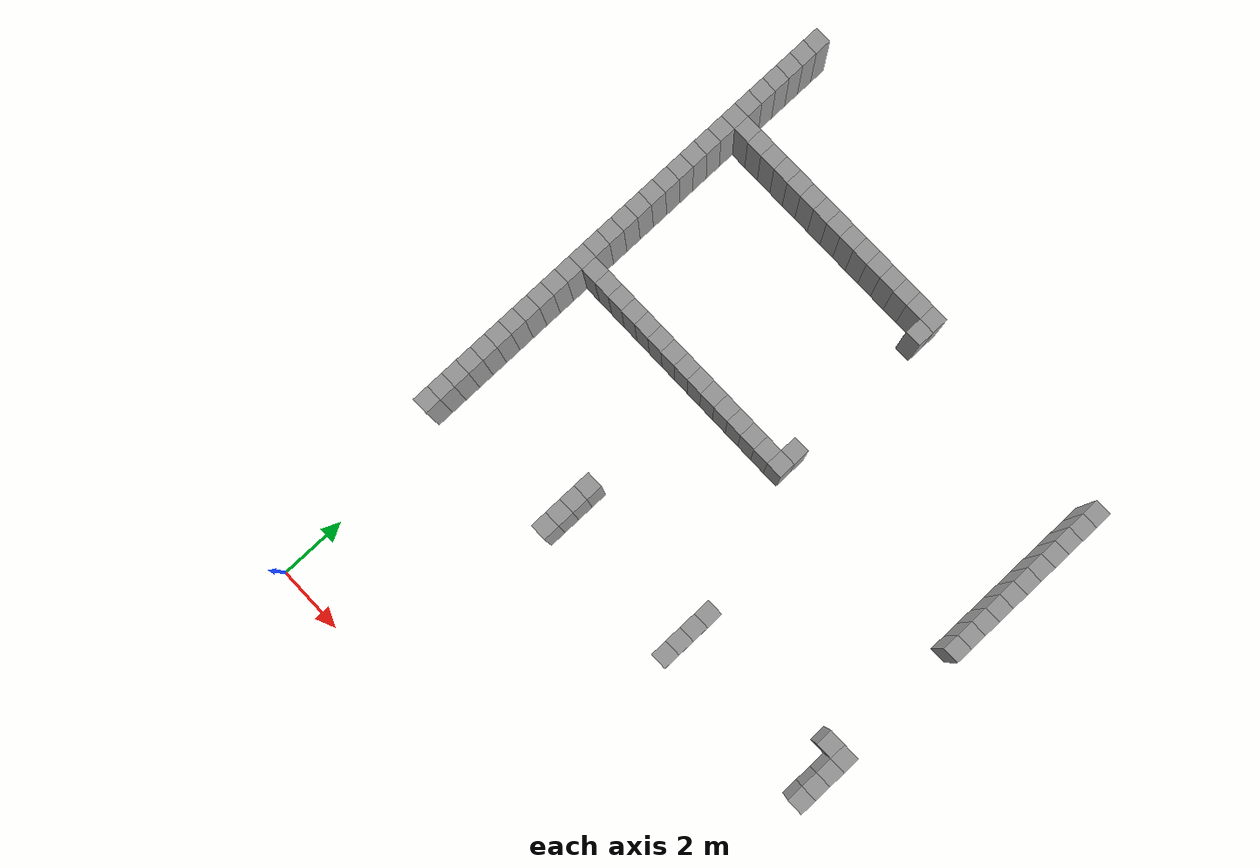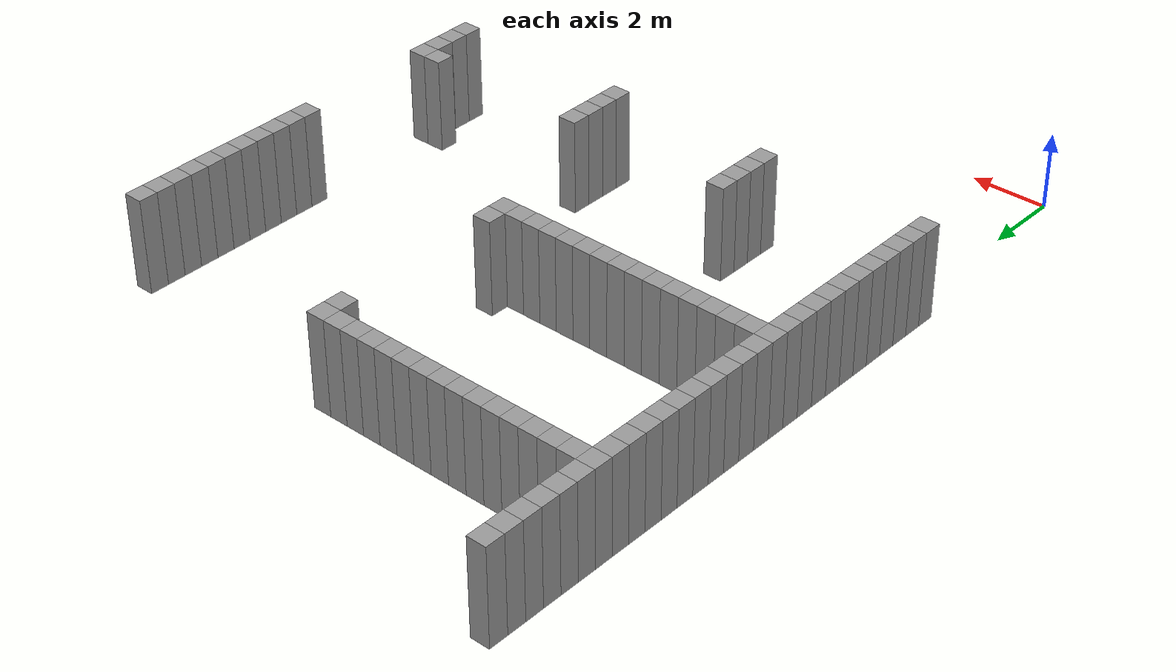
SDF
<sdf version="1.7">
 <model name="image1">
  <pose>-0.375 -1.54 0 0 -0 0</pose>
  <link name="Wall_15">
   <collision name="Wall_15_Collision">
    <geometry><box><size>0.5 0.5 2.5</size></box></geometry>
    <pose>0 0 1.25 0 -0 0</pose>
   </collision>
   <visual name="Wall_15_Visual">
    <pose>0 0 1.25 0 -0 0</pose>
    <geometry><box><size>0.5 0.5 2.5</size></box></geometry>
    <material>
     <script><uri>file://media/materials/scripts/gazebo.material</uri><name>Gazebo/Grey</name></script>
     <ambient>1 1 1 1</ambient>
    </material>
    <meta><layer>0</layer></meta>
   </visual>
   <pose>0.0 7.5 0 0 -0 0</pose>
  </link>
  <link name="Wall_16">
   <collision name="Wall_16_Collision">
    <geometry><box><size>0.5 0.5 2.5</size></box></geometry>
    <pose>0 0 1.25 0 -0 0</pose>
   </collision>
   <visual name="Wall_16_Visual">
    <pose>0 0 1.25 0 -0 0</pose>
    <geometry><box><size>0.5 0.5 2.5</size></box></geometry>
    <material>
     <script><uri>file://media/materials/scripts/gazebo.material</uri><name>Gazebo/Grey</name></script>
     <ambient>1 1 1 1</ambient>
    </material>
    <meta><layer>0</layer></meta>
   </visual>
   <pose>0.0 8.0 0 0 -0 0</pose>
  </link>
  <link name="Wall_17">
   <collision name="Wall_17_Collision">
    <geometry><box><size>0.5 0.5 2.5</size></box></geometry>
    <pose>0 0 1.25 0 -0 0</pose>
   </collision>
   <visual name="Wall_17_Visual">
    <pose>0 0 1.25 0 -0 0</pose>
    <geometry><box><size>0.5 0.5 2.5</size></box></geometry>
    <material>
     <script><uri>file://media/materials/scripts/gazebo.material</uri><name>Gazebo/Grey</name></script>
     <ambient>1 1 1 1</ambient>
    </material>
    <meta><layer>0</layer></meta>
   </visual>
   <pose>0.0 8.5 0 0 -0 0</pose>
  </link>
  <link name="Wall_18">
   <collision name="Wall_18_Collision">
    <geometry><box><size>0.5 0.5 2.5</size></box></geometry>
    <pose>0 0 1.25 0 -0 0</pose>
   </collision>
   <visual name="Wall_18_Visual">
    <pose>0 0 1.25 0 -0 0</pose>
    <geometry><box><size>0.5 0.5 2.5</size></box></geometry>
    <material>
     <script><uri>file://media/materials/scripts/gazebo.material</uri><name>Gazebo/Grey</name></script>
     <ambient>1 1 1 1</ambient>
    </material>
    <meta><layer>0</layer></meta>
   </visual>
   <pose>0.0 9.0 0 0 -0 0</pose>
  </link>
  <link name="Wall_19">
   <collision name="Wall_19_Collision">
    <geometry><box><size>0.5 0.5 2.5</size></box></geometry>
    <pose>0 0 1.25 0 -0 0</pose>
   </collision>
   <visual name="Wall_19_Visual">
    <pose>0 0 1.25 0 -0 0</pose>
    <geometry><box><size>0.5 0.5 2.5</size></box></geometry>
    <material>
     <script><uri>file://media/materials/scripts/gazebo.material</uri><name>Gazebo/Grey</name></script>
     <ambient>1 1 1 1</ambient>
    </material>
    <meta><layer>0</layer></meta>
   </visual>
   <pose>0.0 9.5 0 0 -0 0</pose>
  </link>
  <link name="Wall_20">
   <collision name="Wall_20_Collision">
    <geometry><box><size>0.5 0.5 2.5</size></box></geometry>
    <pose>0 0 1.25 0 -0 0</pose>
   </collision>
   <visual name="Wall_20_Visual">
    <pose>0 0 1.25 0 -0 0</pose>
    <geometry><box><size>0.5 0.5 2.5</size></box></geometry>
    <material>
     <script><uri>file://media/materials/scripts/gazebo.material</uri><name>Gazebo/Grey</name></script>
     <ambient>1 1 1 1</ambient>
    </material>
    <meta><layer>0</layer></meta>
   </visual>
   <pose>0.0 10.0 0 0 -0 0</pose>
  </link>
  <link name="Wall_21">
   <collision name="Wall_21_Collision">
    <geometry><box><size>0.5 0.5 2.5</size></box></geometry>
    <pose>0 0 1.25 0 -0 0</pose>
   </collision>
   <visual name="Wall_21_Visual">
    <pose>0 0 1.25 0 -0 0</pose>
    <geometry><box><size>0.5 0.5 2.5</size></box></geometry>
    <material>
     <script><uri>file://media/materials/scripts/gazebo.material</uri><name>Gazebo/Grey</name></script>
     <ambient>1 1 1 1</ambient>
    </material>
    <meta><layer>0</layer></meta>
   </visual>
   <pose>0.0 10.5 0 0 -0 0</pose>
  </link>
  <link name="Wall_22">
   <collision name="Wall_22_Collision">
    <geometry><box><size>0.5 0.5 2.5</size></box></geometry>
    <pose>0 0 1.25 0 -0 0</pose>
   </collision>
   <visual name="Wall_22_Visual">
    <pose>0 0 1.25 0 -0 0</pose>
    <geometry><box><size>0.5 0.5 2.5</size></box></geometry>
    <material>
     <script><uri>file://media/materials/scripts/gazebo.material</uri><name>Gazebo/Grey</name></script>
     <ambient>1 1 1 1</ambient>
    </material>
    <meta><layer>0</layer></meta>
   </visual>
   <pose>0.0 11.0 0 0 -0 0</pose>
  </link>
  <link name="Wall_23">
   <collision name="Wall_23_Collision">
    <geometry><box><size>0.5 0.5 2.5</size></box></geometry>
    <pose>0 0 1.25 0 -0 0</pose>
   </collision>
   <visual name="Wall_23_Visual">
    <pose>0 0 1.25 0 -0 0</pose>
    <geometry><box><size>0.5 0.5 2.5</size></box></geometry>
    <material>
     <script><uri>file://media/materials/scripts/gazebo.material</uri><name>Gazebo/Grey</name></script>
     <ambient>1 1 1 1</ambient>
    </material>
    <meta><layer>0</layer></meta>
   </visual>
   <pose>0.0 11.5 0 0 -0 0</pose>
  </link>
  <link name="Wall_24">
   <collision name="Wall_24_Collision">
    <geometry><box><size>0.5 0.5 2.5</size></box></geometry>
    <pose>0 0 1.25 0 -0 0</pose>
   </collision>
   <visual name="Wall_24_Visual">
    <pose>0 0 1.25 0 -0 0</pose>
    <geometry><box><size>0.5 0.5 2.5</size></box></geometry>
    <material>
     <script><uri>file://media/materials/scripts/gazebo.material</uri><name>Gazebo/Grey</name></script>
     <ambient>1 1 1 1</ambient>
    </material>
    <meta><layer>0</layer></meta>
   </visual>
   <pose>0.0 12.0 0 0 -0 0</pose>
  </link>
  <link name="Wall_25">
   <collision name="Wall_25_Collision">
    <geometry><box><size>0.5 0.5 2.5</size></box></geometry>
    <pose>0 0 1.25 0 -0 0</pose>
   </collision>
   <visual name="Wall_25_Visual">
    <pose>0 0 1.25 0 -0 0</pose>
    <geometry><box><size>0.5 0.5 2.5</size></box></geometry>
    <material>
     <script><uri>file://media/materials/scripts/gazebo.material</uri><name>Gazebo/Grey</name></script>
     <ambient>1 1 1 1</ambient>
    </material>
    <meta><layer>0</layer></meta>
   </visual>
   <pose>0.0 12.5 0 0 -0 0</pose>
  </link>
  <link name="Wall_26">
   <collision name="Wall_26_Collision">
    <geometry><box><size>0.5 0.5 2.5</size></box></geometry>
    <pose>0 0 1.25 0 -0 0</pose>
   </collision>
   <visual name="Wall_26_Visual">
    <pose>0 0 1.25 0 -0 0</pose>
    <geometry><box><size>0.5 0.5 2.5</size></box></geometry>
    <material>
     <script><uri>file://media/materials/scripts/gazebo.material</uri><name>Gazebo/Grey</name></script>
     <ambient>1 1 1 1</ambient>
    </material>
    <meta><layer>0</layer></meta>
   </visual>
   <pose>0.0 13.0 0 0 -0 0</pose>
  </link>
  <link name="Wall_27">
   <collision name="Wall_27_Collision">
    <geometry><box><size>0.5 0.5 2.5</size></box></geometry>
    <pose>0 0 1.25 0 -0 0</pose>
   </collision>
   <visual name="Wall_27_Visual">
    <pose>0 0 1.25 0 -0 0</pose>
    <geometry><box><size>0.5 0.5 2.5</size></box></geometry>
    <material>
     <script><uri>file://media/materials/scripts/gazebo.material</uri><name>Gazebo/Grey</name></script>
     <ambient>1 1 1 1</ambient>
    </material>
    <meta><layer>0</layer></meta>
   </visual>
   <pose>0.0 13.5 0 0 -0 0</pose>
  </link>
  <link name="Wall_28">
   <collision name="Wall_28_Collision">
    <geometry><box><size>0.5 0.5 2.5</size></box></geometry>
    <pose>0 0 1.25 0 -0 0</pose>
   </collision>
   <visual name="Wall_28_Visual">
    <pose>0 0 1.25 0 -0 0</pose>
    <geometry><box><size>0.5 0.5 2.5</size></box></geometry>
    <material>
     <script><uri>file://media/materials/scripts/gazebo.material</uri><name>Gazebo/Grey</name></script>
     <ambient>1 1 1 1</ambient>
    </material>
    <meta><layer>0</layer></meta>
   </visual>
   <pose>0.0 14.0 0 0 -0 0</pose>
  </link>
  <link name="Wall_29">
   <collision name="Wall_29_Collision">
    <geometry><box><size>0.5 0.5 2.5</size></box></geometry>
    <pose>0 0 1.25 0 -0 0</pose>
   </collision>
   <visual name="Wall_29_Visual">
    <pose>0 0 1.25 0 -0 0</pose>
    <geometry><box><size>0.5 0.5 2.5</size></box></geometry>
    <material>
     <script><uri>file://media/materials/scripts/gazebo.material</uri><name>Gazebo/Grey</name></script>
     <ambient>1 1 1 1</ambient>
    </material>
    <meta><layer>0</layer></meta>
   </visual>
   <pose>0.0 14.5 0 0 -0 0</pose>
  </link>
  <link name="Wall_30">
   <collision name="Wall_30_Collision">
    <geometry><box><size>0.5 0.5 2.5</size></box></geometry>
    <pose>0 0 1.25 0 -0 0</pose>
   </collision>
   <visual name="Wall_30_Visual">
    <pose>0 0 1.25 0 -0 0</pose>
    <geometry><box><size>0.5 0.5 2.5</size></box></geometry>
    <material>
     <script><uri>file://media/materials/scripts/gazebo.material</uri><name>Gazebo/Grey</name></script>
     <ambient>1 1 1 1</ambient>
    </material>
    <meta><layer>0</layer></meta>
   </visual>
   <pose>0.0 15.0 0 0 -0 0</pose>
  </link>
  <link name="Wall_31">
   <collision name="Wall_31_Collision">
    <geometry><box><size>0.5 0.5 2.5</size></box></geometry>
    <pose>0 0 1.25 0 -0 0</pose>
   </collision>
   <visual name="Wall_31_Visual">
    <pose>0 0 1.25 0 -0 0</pose>
    <geometry><box><size>0.5 0.5 2.5</size></box></geometry>
    <material>
     <script><uri>file://media/materials/scripts/gazebo.material</uri><name>Gazebo/Grey</name></script>
     <ambient>1 1 1 1</ambient>
    </material>
    <meta><layer>0</layer></meta>
   </visual>
   <pose>0.0 15.5 0 0 -0 0</pose>
  </link>
  <link name="Wall_32">
   <collision name="Wall_32_Collision">
    <geometry><box><size>0.5 0.5 2.5</size></box></geometry>
    <pose>0 0 1.25 0 -0 0</pose>
   </collision>
   <visual name="Wall_32_Visual">
    <pose>0 0 1.25 0 -0 0</pose>
    <geometry><box><size>0.5 0.5 2.5</size></box></geometry>
    <material>
     <script><uri>file://media/materials/scripts/gazebo.material</uri><name>Gazebo/Grey</name></script>
     <ambient>1 1 1 1</ambient>
    </material>
    <meta><layer>0</layer></meta>
   </visual>
   <pose>0.0 16.0 0 0 -0 0</pose>
  </link>
  <link name="Wall_33">
   <collision name="Wall_33_Collision">
    <geometry><box><size>0.5 0.5 2.5</size></box></geometry>
    <pose>0 0 1.25 0 -0 0</pose>
   </collision>
   <visual name="Wall_33_Visual">
    <pose>0 0 1.25 0 -0 0</pose>
    <geometry><box><size>0.5 0.5 2.5</size></box></geometry>
    <material>
     <script><uri>file://media/materials/scripts/gazebo.material</uri><name>Gazebo/Grey</name></script>
     <ambient>1 1 1 1</ambient>
    </material>
    <meta><layer>0</layer></meta>
   </visual>
   <pose>0.0 16.5 0 0 -0 0</pose>
  </link>
  <link name="Wall_34">
   <collision name="Wall_34_Collision">
    <geometry><box><size>0.5 0.5 2.5</size></box></geometry>
    <pose>0 0 1.25 0 -0 0</pose>
   </collision>
   <visual name="Wall_34_Visual">
    <pose>0 0 1.25 0 -0 0</pose>
    <geometry><box><size>0.5 0.5 2.5</size></box></geometry>
    <material>
     <script><uri>file://media/materials/scripts/gazebo.material</uri><name>Gazebo/Grey</name></script>
     <ambient>1 1 1 1</ambient>
    </material>
    <meta><layer>0</layer></meta>
   </visual>
   <pose>0.0 17.0 0 0 -0 0</pose>
  </link>
  <link name="Wall_35">
   <collision name="Wall_35_Collision">
    <geometry><box><size>0.5 0.5 2.5</size></box></geometry>
    <pose>0 0 1.25 0 -0 0</pose>
   </collision>
   <visual name="Wall_35_Visual">
    <pose>0 0 1.25 0 -0 0</pose>
    <geometry><box><size>0.5 0.5 2.5</size></box></geometry>
    <material>
     <script><uri>file://media/materials/scripts/gazebo.material</uri><name>Gazebo/Grey</name></script>
     <ambient>1 1 1 1</ambient>
    </material>
    <meta><layer>0</layer></meta>
   </visual>
   <pose>0.0 17.5 0 0 -0 0</pose>
  </link>
  <link name="Wall_36">
   <collision name="Wall_36_Collision">
    <geometry><box><size>0.5 0.5 2.5</size></box></geometry>
    <pose>0 0 1.25 0 -0 0</pose>
   </collision>
   <visual name="Wall_36_Visual">
    <pose>0 0 1.25 0 -0 0</pose>
    <geometry><box><size>0.5 0.5 2.5</size></box></geometry>
    <material>
     <script><uri>file://media/materials/scripts/gazebo.material</uri><name>Gazebo/Grey</name></script>
     <ambient>1 1 1 1</ambient>
    </material>
    <meta><layer>0</layer></meta>
   </visual>
   <pose>0.0 18.0 0 0 -0 0</pose>
  </link>
  <link name="Wall_37">
   <collision name="Wall_37_Collision">
    <geometry><box><size>0.5 0.5 2.5</size></box></geometry>
    <pose>0 0 1.25 0 -0 0</pose>
   </collision>
   <visual name="Wall_37_Visual">
    <pose>0 0 1.25 0 -0 0</pose>
    <geometry><box><size>0.5 0.5 2.5</size></box></geometry>
    <material>
     <script><uri>file://media/materials/scripts/gazebo.material</uri><name>Gazebo/Grey</name></script>
     <ambient>1 1 1 1</ambient>
    </material>
    <meta><layer>0</layer></meta>
   </visual>
   <pose>0.0 18.5 0 0 -0 0</pose>
  </link>
  <link name="Wall_38">
   <collision name="Wall_38_Collision">
    <geometry><box><size>0.5 0.5 2.5</size></box></geometry>
    <pose>0 0 1.25 0 -0 0</pose>
   </collision>
   <visual name="Wall_38_Visual">
    <pose>0 0 1.25 0 -0 0</pose>
    <geometry><box><size>0.5 0.5 2.5</size></box></geometry>
    <material>
     <script><uri>file://media/materials/scripts/gazebo.material</uri><name>Gazebo/Grey</name></script>
     <ambient>1 1 1 1</ambient>
    </material>
    <meta><layer>0</layer></meta>
   </visual>
   <pose>0.0 19.0 0 0 -0 0</pose>
  </link>
  <link name="Wall_39">
   <collision name="Wall_39_Collision">
    <geometry><box><size>0.5 0.5 2.5</size></box></geometry>
    <pose>0 0 1.25 0 -0 0</pose>
   </collision>
   <visual name="Wall_39_Visual">
    <pose>0 0 1.25 0 -0 0</pose>
    <geometry><box><size>0.5 0.5 2.5</size></box></geometry>
    <material>
     <script><uri>file://media/materials/scripts/gazebo.material</uri><name>Gazebo/Grey</name></script>
     <ambient>1 1 1 1</ambient>
    </material>
    <meta><layer>0</layer></meta>
   </visual>
   <pose>0.0 19.5 0 0 -0 0</pose>
  </link>
  <link name="Wall_40">
   <collision name="Wall_40_Collision">
    <geometry><box><size>0.5 0.5 2.5</size></box></geometry>
    <pose>0 0 1.25 0 -0 0</pose>
   </collision>
   <visual name="Wall_40_Visual">
    <pose>0 0 1.25 0 -0 0</pose>
    <geometry><box><size>0.5 0.5 2.5</size></box></geometry>
    <material>
     <script><uri>file://media/materials/scripts/gazebo.material</uri><name>Gazebo/Grey</name></script>
     <ambient>1 1 1 1</ambient>
    </material>
    <meta><layer>0</layer></meta>
   </visual>
   <pose>0.0 20.0 0 0 -0 0</pose>
  </link>
  <link name="Wall_41">
   <collision name="Wall_41_Collision">
    <geometry><box><size>0.5 0.5 2.5</size></box></geometry>
    <pose>0 0 1.25 0 -0 0</pose>
   </collision>
   <visual name="Wall_41_Visual">
    <pose>0 0 1.25 0 -0 0</pose>
    <geometry><box><size>0.5 0.5 2.5</size></box></geometry>
    <material>
     <script><uri>file://media/materials/scripts/gazebo.material</uri><name>Gazebo/Grey</name></script>
     <ambient>1 1 1 1</ambient>
    </material>
    <meta><layer>0</layer></meta>
   </visual>
   <pose>0.0 20.5 0 0 -0 0</pose>
  </link>
  <link name="Wall_42">
   <collision name="Wall_42_Collision">
    <geometry><box><size>0.5 0.5 2.5</size></box></geometry>
    <pose>0 0 1.25 0 -0 0</pose>
   </collision>
   <visual name="Wall_42_Visual">
    <pose>0 0 1.25 0 -0 0</pose>
    <geometry><box><size>0.5 0.5 2.5</size></box></geometry>
    <material>
     <script><uri>file://media/materials/scripts/gazebo.material</uri><name>Gazebo/Grey</name></script>
     <ambient>1 1 1 1</ambient>
    </material>
    <meta><layer>0</layer></meta>
   </visual>
   <pose>0.0 21.0 0 0 -0 0</pose>
  </link>
  <link name="Wall_43">
   <collision name="Wall_43_Collision">
    <geometry><box><size>0.5 0.5 2.5</size></box></geometry>
    <pose>0 0 1.25 0 -0 0</pose>
   </collision>
   <visual name="Wall_43_Visual">
    <pose>0 0 1.25 0 -0 0</pose>
    <geometry><box><size>0.5 0.5 2.5</size></box></geometry>
    <material>
     <script><uri>file://media/materials/scripts/gazebo.material</uri><name>Gazebo/Grey</name></script>
     <ambient>1 1 1 1</ambient>
    </material>
    <meta><layer>0</layer></meta>
   </visual>
   <pose>0.0 21.5 0 0 -0 0</pose>
  </link>
  <link name="Wall_61">
   <collision name="Wall_61_Collision">
    <geometry><box><size>0.5 0.5 2.5</size></box></geometry>
    <pose>0 0 1.25 0 -0 0</pose>
   </collision>
   <visual name="Wall_61_Visual">
    <pose>0 0 1.25 0 -0 0</pose>
    <geometry><box><size>0.5 0.5 2.5</size></box></geometry>
    <material>
     <script><uri>file://media/materials/scripts/gazebo.material</uri><name>Gazebo/Grey</name></script>
     <ambient>1 1 1 1</ambient>
    </material>
    <meta><layer>0</layer></meta>
   </visual>
   <pose>0.5 13.0 0 0 -0 0</pose>
  </link>
  <link name="Wall_62">
   <collision name="Wall_62_Collision">
    <geometry><box><size>0.5 0.5 2.5</size></box></geometry>
    <pose>0 0 1.25 0 -0 0</pose>
   </collision>
   <visual name="Wall_62_Visual">
    <pose>0 0 1.25 0 -0 0</pose>
    <geometry><box><size>0.5 0.5 2.5</size></box></geometry>
    <material>
     <script><uri>file://media/materials/scripts/gazebo.material</uri><name>Gazebo/Grey</name></script>
     <ambient>1 1 1 1</ambient>
    </material>
    <meta><layer>0</layer></meta>
   </visual>
   <pose>0.5 18.5 0 0 -0 0</pose>
  </link>
  <link name="Wall_66">
   <collision name="Wall_66_Collision">
    <geometry><box><size>0.5 0.5 2.5</size></box></geometry>
    <pose>0 0 1.25 0 -0 0</pose>
   </collision>
   <visual name="Wall_66_Visual">
    <pose>0 0 1.25 0 -0 0</pose>
    <geometry><box><size>0.5 0.5 2.5</size></box></geometry>
    <material>
     <script><uri>file://media/materials/scripts/gazebo.material</uri><name>Gazebo/Grey</name></script>
     <ambient>1 1 1 1</ambient>
    </material>
    <meta><layer>0</layer></meta>
   </visual>
   <pose>1.0 13.0 0 0 -0 0</pose>
  </link>
  <link name="Wall_67">
   <collision name="Wall_67_Collision">
    <geometry><box><size>0.5 0.5 2.5</size></box></geometry>
    <pose>0 0 1.25 0 -0 0</pose>
   </collision>
   <visual name="Wall_67_Visual">
    <pose>0 0 1.25 0 -0 0</pose>
    <geometry><box><size>0.5 0.5 2.5</size></box></geometry>
    <material>
     <script><uri>file://media/materials/scripts/gazebo.material</uri><name>Gazebo/Grey</name></script>
     <ambient>1 1 1 1</ambient>
    </material>
    <meta><layer>0</layer></meta>
   </visual>
   <pose>1.0 18.5 0 0 -0 0</pose>
  </link>
  <link name="Wall_71">
   <collision name="Wall_71_Collision">
    <geometry><box><size>0.5 0.5 2.5</size></box></geometry>
    <pose>0 0 1.25 0 -0 0</pose>
   </collision>
   <visual name="Wall_71_Visual">
    <pose>0 0 1.25 0 -0 0</pose>
    <geometry><box><size>0.5 0.5 2.5</size></box></geometry>
    <material>
     <script><uri>file://media/materials/scripts/gazebo.material</uri><name>Gazebo/Grey</name></script>
     <ambient>1 1 1 1</ambient>
    </material>
    <meta><layer>0</layer></meta>
   </visual>
   <pose>1.5 13.0 0 0 -0 0</pose>
  </link>
  <link name="Wall_72">
   <collision name="Wall_72_Collision">
    <geometry><box><size>0.5 0.5 2.5</size></box></geometry>
    <pose>0 0 1.25 0 -0 0</pose>
   </collision>
   <visual name="Wall_72_Visual">
    <pose>0 0 1.25 0 -0 0</pose>
    <geometry><box><size>0.5 0.5 2.5</size></box></geometry>
    <material>
     <script><uri>file://media/materials/scripts/gazebo.material</uri><name>Gazebo/Grey</name></script>
     <ambient>1 1 1 1</ambient>
    </material>
    <meta><layer>0</layer></meta>
   </visual>
   <pose>1.5 18.5 0 0 -0 0</pose>
  </link>
  <link name="Wall_76">
   <collision name="Wall_76_Collision">
    <geometry><box><size>0.5 0.5 2.5</size></box></geometry>
    <pose>0 0 1.25 0 -0 0</pose>
   </collision>
   <visual name="Wall_76_Visual">
    <pose>0 0 1.25 0 -0 0</pose>
    <geometry><box><size>0.5 0.5 2.5</size></box></geometry>
    <material>
     <script><uri>file://media/materials/scripts/gazebo.material</uri><name>Gazebo/Grey</name></script>
     <ambient>1 1 1 1</ambient>
    </material>
    <meta><layer>0</layer></meta>
   </visual>
   <pose>2.0 13.0 0 0 -0 0</pose>
  </link>
  <link name="Wall_77">
   <collision name="Wall_77_Collision">
    <geometry><box><size>0.5 0.5 2.5</size></box></geometry>
    <pose>0 0 1.25 0 -0 0</pose>
   </collision>
   <visual name="Wall_77_Visual">
    <pose>0 0 1.25 0 -0 0</pose>
    <geometry><box><size>0.5 0.5 2.5</size></box></geometry>
    <material>
     <script><uri>file://media/materials/scripts/gazebo.material</uri><name>Gazebo/Grey</name></script>
     <ambient>1 1 1 1</ambient>
    </material>
    <meta><layer>0</layer></meta>
   </visual>
   <pose>2.0 18.5 0 0 -0 0</pose>
  </link>
  <link name="Wall_80">
   <collision name="Wall_80_Collision">
    <geometry><box><size>0.5 0.5 2.5</size></box></geometry>
    <pose>0 0 1.25 0 -0 0</pose>
   </collision>
   <visual name="Wall_80_Visual">
    <pose>0 0 1.25 0 -0 0</pose>
    <geometry><box><size>0.5 0.5 2.5</size></box></geometry>
    <material>
     <script><uri>file://media/materials/scripts/gazebo.material</uri><name>Gazebo/Grey</name></script>
     <ambient>1 1 1 1</ambient>
    </material>
    <meta><layer>0</layer></meta>
   </visual>
   <pose>2.5 13.0 0 0 -0 0</pose>
  </link>
  <link name="Wall_81">
   <collision name="Wall_81_Collision">
    <geometry><box><size>0.5 0.5 2.5</size></box></geometry>
    <pose>0 0 1.25 0 -0 0</pose>
   </collision>
   <visual name="Wall_81_Visual">
    <pose>0 0 1.25 0 -0 0</pose>
    <geometry><box><size>0.5 0.5 2.5</size></box></geometry>
    <material>
     <script><uri>file://media/materials/scripts/gazebo.material</uri><name>Gazebo/Grey</name></script>
     <ambient>1 1 1 1</ambient>
    </material>
    <meta><layer>0</layer></meta>
   </visual>
   <pose>2.5 18.5 0 0 -0 0</pose>
  </link>
  <link name="Wall_84">
   <collision name="Wall_84_Collision">
    <geometry><box><size>0.5 0.5 2.5</size></box></geometry>
    <pose>0 0 1.25 0 -0 0</pose>
   </collision>
   <visual name="Wall_84_Visual">
    <pose>0 0 1.25 0 -0 0</pose>
    <geometry><box><size>0.5 0.5 2.5</size></box></geometry>
    <material>
     <script><uri>file://media/materials/scripts/gazebo.material</uri><name>Gazebo/Grey</name></script>
     <ambient>1 1 1 1</ambient>
    </material>
    <meta><layer>0</layer></meta>
   </visual>
   <pose>3.0 13.0 0 0 -0 0</pose>
  </link>
  <link name="Wall_85">
   <collision name="Wall_85_Collision">
    <geometry><box><size>0.5 0.5 2.5</size></box></geometry>
    <pose>0 0 1.25 0 -0 0</pose>
   </collision>
   <visual name="Wall_85_Visual">
    <pose>0 0 1.25 0 -0 0</pose>
    <geometry><box><size>0.5 0.5 2.5</size></box></geometry>
    <material>
     <script><uri>file://media/materials/scripts/gazebo.material</uri><name>Gazebo/Grey</name></script>
     <ambient>1 1 1 1</ambient>
    </material>
    <meta><layer>0</layer></meta>
   </visual>
   <pose>3.0 18.5 0 0 -0 0</pose>
  </link>
  <link name="Wall_88">
   <collision name="Wall_88_Collision">
    <geometry><box><size>0.5 0.5 2.5</size></box></geometry>
    <pose>0 0 1.25 0 -0 0</pose>
   </collision>
   <visual name="Wall_88_Visual">
    <pose>0 0 1.25 0 -0 0</pose>
    <geometry><box><size>0.5 0.5 2.5</size></box></geometry>
    <material>
     <script><uri>file://media/materials/scripts/gazebo.material</uri><name>Gazebo/Grey</name></script>
     <ambient>1 1 1 1</ambient>
    </material>
    <meta><layer>0</layer></meta>
   </visual>
   <pose>3.5 13.0 0 0 -0 0</pose>
  </link>
  <link name="Wall_89">
   <collision name="Wall_89_Collision">
    <geometry><box><size>0.5 0.5 2.5</size></box></geometry>
    <pose>0 0 1.25 0 -0 0</pose>
   </collision>
   <visual name="Wall_89_Visual">
    <pose>0 0 1.25 0 -0 0</pose>
    <geometry><box><size>0.5 0.5 2.5</size></box></geometry>
    <material>
     <script><uri>file://media/materials/scripts/gazebo.material</uri><name>Gazebo/Grey</name></script>
     <ambient>1 1 1 1</ambient>
    </material>
    <meta><layer>0</layer></meta>
   </visual>
   <pose>3.5 18.5 0 0 -0 0</pose>
  </link>
  <link name="Wall_92">
   <collision name="Wall_92_Collision">
    <geometry><box><size>0.5 0.5 2.5</size></box></geometry>
    <pose>0 0 1.25 0 -0 0</pose>
   </collision>
   <visual name="Wall_92_Visual">
    <pose>0 0 1.25 0 -0 0</pose>
    <geometry><box><size>0.5 0.5 2.5</size></box></geometry>
    <material>
     <script><uri>file://media/materials/scripts/gazebo.material</uri><name>Gazebo/Grey</name></script>
     <ambient>1 1 1 1</ambient>
    </material>
    <meta><layer>0</layer></meta>
   </visual>
   <pose>4.0 13.0 0 0 -0 0</pose>
  </link>
  <link name="Wall_93">
   <collision name="Wall_93_Collision">
    <geometry><box><size>0.5 0.5 2.5</size></box></geometry>
    <pose>0 0 1.25 0 -0 0</pose>
   </collision>
   <visual name="Wall_93_Visual">
    <pose>0 0 1.25 0 -0 0</pose>
    <geometry><box><size>0.5 0.5 2.5</size></box></geometry>
    <material>
     <script><uri>file://media/materials/scripts/gazebo.material</uri><name>Gazebo/Grey</name></script>
     <ambient>1 1 1 1</ambient>
    </material>
    <meta><layer>0</layer></meta>
   </visual>
   <pose>4.0 18.5 0 0 -0 0</pose>
  </link>
  <link name="Wall_110">
   <collision name="Wall_110_Collision">
    <geometry><box><size>0.5 0.5 2.5</size></box></geometry>
    <pose>0 0 1.25 0 -0 0</pose>
   </collision>
   <visual name="Wall_110_Visual">
    <pose>0 0 1.25 0 -0 0</pose>
    <geometry><box><size>0.5 0.5 2.5</size></box></geometry>
    <material>
     <script><uri>file://media/materials/scripts/gazebo.material</uri><name>Gazebo/Grey</name></script>
     <ambient>1 1 1 1</ambient>
    </material>
    <meta><layer>0</layer></meta>
   </visual>
   <pose>4.5 7.5 0 0 -0 0</pose>
  </link>
  <link name="Wall_111">
   <collision name="Wall_111_Collision">
    <geometry><box><size>0.5 0.5 2.5</size></box></geometry>
    <pose>0 0 1.25 0 -0 0</pose>
   </collision>
   <visual name="Wall_111_Visual">
    <pose>0 0 1.25 0 -0 0</pose>
    <geometry><box><size>0.5 0.5 2.5</size></box></geometry>
    <material>
     <script><uri>file://media/materials/scripts/gazebo.material</uri><name>Gazebo/Grey</name></script>
     <ambient>1 1 1 1</ambient>
    </material>
    <meta><layer>0</layer></meta>
   </visual>
   <pose>4.5 8.0 0 0 -0 0</pose>
  </link>
  <link name="Wall_112">
   <collision name="Wall_112_Collision">
    <geometry><box><size>0.5 0.5 2.5</size></box></geometry>
    <pose>0 0 1.25 0 -0 0</pose>
   </collision>
   <visual name="Wall_112_Visual">
    <pose>0 0 1.25 0 -0 0</pose>
    <geometry><box><size>0.5 0.5 2.5</size></box></geometry>
    <material>
     <script><uri>file://media/materials/scripts/gazebo.material</uri><name>Gazebo/Grey</name></script>
     <ambient>1 1 1 1</ambient>
    </material>
    <meta><layer>0</layer></meta>
   </visual>
   <pose>4.5 8.5 0 0 -0 0</pose>
  </link>
  <link name="Wall_113">
   <collision name="Wall_113_Collision">
    <geometry><box><size>0.5 0.5 2.5</size></box></geometry>
    <pose>0 0 1.25 0 -0 0</pose>
   </collision>
   <visual name="Wall_113_Visual">
    <pose>0 0 1.25 0 -0 0</pose>
    <geometry><box><size>0.5 0.5 2.5</size></box></geometry>
    <material>
     <script><uri>file://media/materials/scripts/gazebo.material</uri><name>Gazebo/Grey</name></script>
     <ambient>1 1 1 1</ambient>
    </material>
    <meta><layer>0</layer></meta>
   </visual>
   <pose>4.5 9.0 0 0 -0 0</pose>
  </link>
  <link name="Wall_114">
   <collision name="Wall_114_Collision">
    <geometry><box><size>0.5 0.5 2.5</size></box></geometry>
    <pose>0 0 1.25 0 -0 0</pose>
   </collision>
   <visual name="Wall_114_Visual">
    <pose>0 0 1.25 0 -0 0</pose>
    <geometry><box><size>0.5 0.5 2.5</size></box></geometry>
    <material>
     <script><uri>file://media/materials/scripts/gazebo.material</uri><name>Gazebo/Grey</name></script>
     <ambient>1 1 1 1</ambient>
    </material>
    <meta><layer>0</layer></meta>
   </visual>
   <pose>4.5 13.0 0 0 -0 0</pose>
  </link>
  <link name="Wall_115">
   <collision name="Wall_115_Collision">
    <geometry><box><size>0.5 0.5 2.5</size></box></geometry>
    <pose>0 0 1.25 0 -0 0</pose>
   </collision>
   <visual name="Wall_115_Visual">
    <pose>0 0 1.25 0 -0 0</pose>
    <geometry><box><size>0.5 0.5 2.5</size></box></geometry>
    <material>
     <script><uri>file://media/materials/scripts/gazebo.material</uri><name>Gazebo/Grey</name></script>
     <ambient>1 1 1 1</ambient>
    </material>
    <meta><layer>0</layer></meta>
   </visual>
   <pose>4.5 18.5 0 0 -0 0</pose>
  </link>
  <link name="Wall_118">
   <collision name="Wall_118_Collision">
    <geometry><box><size>0.5 0.5 2.5</size></box></geometry>
    <pose>0 0 1.25 0 -0 0</pose>
   </collision>
   <visual name="Wall_118_Visual">
    <pose>0 0 1.25 0 -0 0</pose>
    <geometry><box><size>0.5 0.5 2.5</size></box></geometry>
    <material>
     <script><uri>file://media/materials/scripts/gazebo.material</uri><name>Gazebo/Grey</name></script>
     <ambient>1 1 1 1</ambient>
    </material>
    <meta><layer>0</layer></meta>
   </visual>
   <pose>5.0 13.0 0 0 -0 0</pose>
  </link>
  <link name="Wall_119">
   <collision name="Wall_119_Collision">
    <geometry><box><size>0.5 0.5 2.5</size></box></geometry>
    <pose>0 0 1.25 0 -0 0</pose>
   </collision>
   <visual name="Wall_119_Visual">
    <pose>0 0 1.25 0 -0 0</pose>
    <geometry><box><size>0.5 0.5 2.5</size></box></geometry>
    <material>
     <script><uri>file://media/materials/scripts/gazebo.material</uri><name>Gazebo/Grey</name></script>
     <ambient>1 1 1 1</ambient>
    </material>
    <meta><layer>0</layer></meta>
   </visual>
   <pose>5.0 18.5 0 0 -0 0</pose>
  </link>
  <link name="Wall_123">
   <collision name="Wall_123_Collision">
    <geometry><box><size>0.5 0.5 2.5</size></box></geometry>
    <pose>0 0 1.25 0 -0 0</pose>
   </collision>
   <visual name="Wall_123_Visual">
    <pose>0 0 1.25 0 -0 0</pose>
    <geometry><box><size>0.5 0.5 2.5</size></box></geometry>
    <material>
     <script><uri>file://media/materials/scripts/gazebo.material</uri><name>Gazebo/Grey</name></script>
     <ambient>1 1 1 1</ambient>
    </material>
    <meta><layer>0</layer></meta>
   </visual>
   <pose>5.5 13.0 0 0 -0 0</pose>
  </link>
  <link name="Wall_124">
   <collision name="Wall_124_Collision">
    <geometry><box><size>0.5 0.5 2.5</size></box></geometry>
    <pose>0 0 1.25 0 -0 0</pose>
   </collision>
   <visual name="Wall_124_Visual">
    <pose>0 0 1.25 0 -0 0</pose>
    <geometry><box><size>0.5 0.5 2.5</size></box></geometry>
    <material>
     <script><uri>file://media/materials/scripts/gazebo.material</uri><name>Gazebo/Grey</name></script>
     <ambient>1 1 1 1</ambient>
    </material>
    <meta><layer>0</layer></meta>
   </visual>
   <pose>5.5 18.5 0 0 -0 0</pose>
  </link>
  <link name="Wall_128">
   <collision name="Wall_128_Collision">
    <geometry><box><size>0.5 0.5 2.5</size></box></geometry>
    <pose>0 0 1.25 0 -0 0</pose>
   </collision>
   <visual name="Wall_128_Visual">
    <pose>0 0 1.25 0 -0 0</pose>
    <geometry><box><size>0.5 0.5 2.5</size></box></geometry>
    <material>
     <script><uri>file://media/materials/scripts/gazebo.material</uri><name>Gazebo/Grey</name></script>
     <ambient>1 1 1 1</ambient>
    </material>
    <meta><layer>0</layer></meta>
   </visual>
   <pose>6.0 13.0 0 0 -0 0</pose>
  </link>
  <link name="Wall_129">
   <collision name="Wall_129_Collision">
    <geometry><box><size>0.5 0.5 2.5</size></box></geometry>
    <pose>0 0 1.25 0 -0 0</pose>
   </collision>
   <visual name="Wall_129_Visual">
    <pose>0 0 1.25 0 -0 0</pose>
    <geometry><box><size>0.5 0.5 2.5</size></box></geometry>
    <material>
     <script><uri>file://media/materials/scripts/gazebo.material</uri><name>Gazebo/Grey</name></script>
     <ambient>1 1 1 1</ambient>
    </material>
    <meta><layer>0</layer></meta>
   </visual>
   <pose>6.0 18.5 0 0 -0 0</pose>
  </link>
  <link name="Wall_133">
   <collision name="Wall_133_Collision">
    <geometry><box><size>0.5 0.5 2.5</size></box></geometry>
    <pose>0 0 1.25 0 -0 0</pose>
   </collision>
   <visual name="Wall_133_Visual">
    <pose>0 0 1.25 0 -0 0</pose>
    <geometry><box><size>0.5 0.5 2.5</size></box></geometry>
    <material>
     <script><uri>file://media/materials/scripts/gazebo.material</uri><name>Gazebo/Grey</name></script>
     <ambient>1 1 1 1</ambient>
    </material>
    <meta><layer>0</layer></meta>
   </visual>
   <pose>6.5 13.0 0 0 -0 0</pose>
  </link>
  <link name="Wall_134">
   <collision name="Wall_134_Collision">
    <geometry><box><size>0.5 0.5 2.5</size></box></geometry>
    <pose>0 0 1.25 0 -0 0</pose>
   </collision>
   <visual name="Wall_134_Visual">
    <pose>0 0 1.25 0 -0 0</pose>
    <geometry><box><size>0.5 0.5 2.5</size></box></geometry>
    <material>
     <script><uri>file://media/materials/scripts/gazebo.material</uri><name>Gazebo/Grey</name></script>
     <ambient>1 1 1 1</ambient>
    </material>
    <meta><layer>0</layer></meta>
   </visual>
   <pose>6.5 18.5 0 0 -0 0</pose>
  </link>
  <link name="Wall_152">
   <collision name="Wall_152_Collision">
    <geometry><box><size>0.5 0.5 2.5</size></box></geometry>
    <pose>0 0 1.25 0 -0 0</pose>
   </collision>
   <visual name="Wall_152_Visual">
    <pose>0 0 1.25 0 -0 0</pose>
    <geometry><box><size>0.5 0.5 2.5</size></box></geometry>
    <material>
     <script><uri>file://media/materials/scripts/gazebo.material</uri><name>Gazebo/Grey</name></script>
     <ambient>1 1 1 1</ambient>
    </material>
    <meta><layer>0</layer></meta>
   </visual>
   <pose>7.0 13.0 0 0 -0 0</pose>
  </link>
  <link name="Wall_153">
   <collision name="Wall_153_Collision">
    <geometry><box><size>0.5 0.5 2.5</size></box></geometry>
    <pose>0 0 1.25 0 -0 0</pose>
   </collision>
   <visual name="Wall_153_Visual">
    <pose>0 0 1.25 0 -0 0</pose>
    <geometry><box><size>0.5 0.5 2.5</size></box></geometry>
    <material>
     <script><uri>file://media/materials/scripts/gazebo.material</uri><name>Gazebo/Grey</name></script>
     <ambient>1 1 1 1</ambient>
    </material>
    <meta><layer>0</layer></meta>
   </visual>
   <pose>7.0 18.5 0 0 -0 0</pose>
  </link>
  <link name="Wall_157">
   <collision name="Wall_157_Collision">
    <geometry><box><size>0.5 0.5 2.5</size></box></geometry>
    <pose>0 0 1.25 0 -0 0</pose>
   </collision>
   <visual name="Wall_157_Visual">
    <pose>0 0 1.25 0 -0 0</pose>
    <geometry><box><size>0.5 0.5 2.5</size></box></geometry>
    <material>
     <script><uri>file://media/materials/scripts/gazebo.material</uri><name>Gazebo/Grey</name></script>
     <ambient>1 1 1 1</ambient>
    </material>
    <meta><layer>0</layer></meta>
   </visual>
   <pose>7.5 13.0 0 0 -0 0</pose>
  </link>
  <link name="Wall_158">
   <collision name="Wall_158_Collision">
    <geometry><box><size>0.5 0.5 2.5</size></box></geometry>
    <pose>0 0 1.25 0 -0 0</pose>
   </collision>
   <visual name="Wall_158_Visual">
    <pose>0 0 1.25 0 -0 0</pose>
    <geometry><box><size>0.5 0.5 2.5</size></box></geometry>
    <material>
     <script><uri>file://media/materials/scripts/gazebo.material</uri><name>Gazebo/Grey</name></script>
     <ambient>1 1 1 1</ambient>
    </material>
    <meta><layer>0</layer></meta>
   </visual>
   <pose>7.5 13.5 0 0 -0 0</pose>
  </link>
  <link name="Wall_159">
   <collision name="Wall_159_Collision">
    <geometry><box><size>0.5 0.5 2.5</size></box></geometry>
    <pose>0 0 1.25 0 -0 0</pose>
   </collision>
   <visual name="Wall_159_Visual">
    <pose>0 0 1.25 0 -0 0</pose>
    <geometry><box><size>0.5 0.5 2.5</size></box></geometry>
    <material>
     <script><uri>file://media/materials/scripts/gazebo.material</uri><name>Gazebo/Grey</name></script>
     <ambient>1 1 1 1</ambient>
    </material>
    <meta><layer>0</layer></meta>
   </visual>
   <pose>7.5 18.0 0 0 -0 0</pose>
  </link>
  <link name="Wall_160">
   <collision name="Wall_160_Collision">
    <geometry><box><size>0.5 0.5 2.5</size></box></geometry>
    <pose>0 0 1.25 0 -0 0</pose>
   </collision>
   <visual name="Wall_160_Visual">
    <pose>0 0 1.25 0 -0 0</pose>
    <geometry><box><size>0.5 0.5 2.5</size></box></geometry>
    <material>
     <script><uri>file://media/materials/scripts/gazebo.material</uri><name>Gazebo/Grey</name></script>
     <ambient>1 1 1 1</ambient>
    </material>
    <meta><layer>0</layer></meta>
   </visual>
   <pose>7.5 18.5 0 0 -0 0</pose>
  </link>
  <link name="Wall_181">
   <collision name="Wall_181_Collision">
    <geometry><box><size>0.5 0.5 2.5</size></box></geometry>
    <pose>0 0 1.25 0 -0 0</pose>
   </collision>
   <visual name="Wall_181_Visual">
    <pose>0 0 1.25 0 -0 0</pose>
    <geometry><box><size>0.5 0.5 2.5</size></box></geometry>
    <material>
     <script><uri>file://media/materials/scripts/gazebo.material</uri><name>Gazebo/Grey</name></script>
     <ambient>1 1 1 1</ambient>
    </material>
    <meta><layer>0</layer></meta>
   </visual>
   <pose>9.0 7.5 0 0 -0 0</pose>
  </link>
  <link name="Wall_182">
   <collision name="Wall_182_Collision">
    <geometry><box><size>0.5 0.5 2.5</size></box></geometry>
    <pose>0 0 1.25 0 -0 0</pose>
   </collision>
   <visual name="Wall_182_Visual">
    <pose>0 0 1.25 0 -0 0</pose>
    <geometry><box><size>0.5 0.5 2.5</size></box></geometry>
    <material>
     <script><uri>file://media/materials/scripts/gazebo.material</uri><name>Gazebo/Grey</name></script>
     <ambient>1 1 1 1</ambient>
    </material>
    <meta><layer>0</layer></meta>
   </visual>
   <pose>9.0 8.0 0 0 -0 0</pose>
  </link>
  <link name="Wall_183">
   <collision name="Wall_183_Collision">
    <geometry><box><size>0.5 0.5 2.5</size></box></geometry>
    <pose>0 0 1.25 0 -0 0</pose>
   </collision>
   <visual name="Wall_183_Visual">
    <pose>0 0 1.25 0 -0 0</pose>
    <geometry><box><size>0.5 0.5 2.5</size></box></geometry>
    <material>
     <script><uri>file://media/materials/scripts/gazebo.material</uri><name>Gazebo/Grey</name></script>
     <ambient>1 1 1 1</ambient>
    </material>
    <meta><layer>0</layer></meta>
   </visual>
   <pose>9.0 8.5 0 0 -0 0</pose>
  </link>
  <link name="Wall_184">
   <collision name="Wall_184_Collision">
    <geometry><box><size>0.5 0.5 2.5</size></box></geometry>
    <pose>0 0 1.25 0 -0 0</pose>
   </collision>
   <visual name="Wall_184_Visual">
    <pose>0 0 1.25 0 -0 0</pose>
    <geometry><box><size>0.5 0.5 2.5</size></box></geometry>
    <material>
     <script><uri>file://media/materials/scripts/gazebo.material</uri><name>Gazebo/Grey</name></script>
     <ambient>1 1 1 1</ambient>
    </material>
    <meta><layer>0</layer></meta>
   </visual>
   <pose>9.0 9.0 0 0 -0 0</pose>
  </link>
  <link name="Wall_222">
   <collision name="Wall_222_Collision">
    <geometry><box><size>0.5 0.5 2.5</size></box></geometry>
    <pose>0 0 1.25 0 -0 0</pose>
   </collision>
   <visual name="Wall_222_Visual">
    <pose>0 0 1.25 0 -0 0</pose>
    <geometry><box><size>0.5 0.5 2.5</size></box></geometry>
    <material>
     <script><uri>file://media/materials/scripts/gazebo.material</uri><name>Gazebo/Grey</name></script>
     <ambient>1 1 1 1</ambient>
    </material>
    <meta><layer>0</layer></meta>
   </visual>
   <pose>13.5 9.0 0 0 -0 0</pose>
  </link>
  <link name="Wall_239">
   <collision name="Wall_239_Collision">
    <geometry><box><size>0.5 0.5 2.5</size></box></geometry>
    <pose>0 0 1.25 0 -0 0</pose>
   </collision>
   <visual name="Wall_239_Visual">
    <pose>0 0 1.25 0 -0 0</pose>
    <geometry><box><size>0.5 0.5 2.5</size></box></geometry>
    <material>
     <script><uri>file://media/materials/scripts/gazebo.material</uri><name>Gazebo/Grey</name></script>
     <ambient>1 1 1 1</ambient>
    </material>
    <meta><layer>0</layer></meta>
   </visual>
   <pose>14.0 7.5 0 0 -0 0</pose>
  </link>
  <link name="Wall_240">
   <collision name="Wall_240_Collision">
    <geometry><box><size>0.5 0.5 2.5</size></box></geometry>
    <pose>0 0 1.25 0 -0 0</pose>
   </collision>
   <visual name="Wall_240_Visual">
    <pose>0 0 1.25 0 -0 0</pose>
    <geometry><box><size>0.5 0.5 2.5</size></box></geometry>
    <material>
     <script><uri>file://media/materials/scripts/gazebo.material</uri><name>Gazebo/Grey</name></script>
     <ambient>1 1 1 1</ambient>
    </material>
    <meta><layer>0</layer></meta>
   </visual>
   <pose>14.0 8.0 0 0 -0 0</pose>
  </link>
  <link name="Wall_241">
   <collision name="Wall_241_Collision">
    <geometry><box><size>0.5 0.5 2.5</size></box></geometry>
    <pose>0 0 1.25 0 -0 0</pose>
   </collision>
   <visual name="Wall_241_Visual">
    <pose>0 0 1.25 0 -0 0</pose>
    <geometry><box><size>0.5 0.5 2.5</size></box></geometry>
    <material>
     <script><uri>file://media/materials/scripts/gazebo.material</uri><name>Gazebo/Grey</name></script>
     <ambient>1 1 1 1</ambient>
    </material>
    <meta><layer>0</layer></meta>
   </visual>
   <pose>14.0 8.5 0 0 -0 0</pose>
  </link>
  <link name="Wall_242">
   <collision name="Wall_242_Collision">
    <geometry><box><size>0.5 0.5 2.5</size></box></geometry>
    <pose>0 0 1.25 0 -0 0</pose>
   </collision>
   <visual name="Wall_242_Visual">
    <pose>0 0 1.25 0 -0 0</pose>
    <geometry><box><size>0.5 0.5 2.5</size></box></geometry>
    <material>
     <script><uri>file://media/materials/scripts/gazebo.material</uri><name>Gazebo/Grey</name></script>
     <ambient>1 1 1 1</ambient>
    </material>
    <meta><layer>0</layer></meta>
   </visual>
   <pose>14.0 9.0 0 0 -0 0</pose>
  </link>
  <link name="Wall_243">
   <collision name="Wall_243_Collision">
    <geometry><box><size>0.5 0.5 2.5</size></box></geometry>
    <pose>0 0 1.25 0 -0 0</pose>
   </collision>
   <visual name="Wall_243_Visual">
    <pose>0 0 1.25 0 -0 0</pose>
    <geometry><box><size>0.5 0.5 2.5</size></box></geometry>
    <material>
     <script><uri>file://media/materials/scripts/gazebo.material</uri><name>Gazebo/Grey</name></script>
     <ambient>1 1 1 1</ambient>
    </material>
    <meta><layer>0</layer></meta>
   </visual>
   <pose>14.0 13.0 0 0 -0 0</pose>
  </link>
  <link name="Wall_244">
   <collision name="Wall_244_Collision">
    <geometry><box><size>0.5 0.5 2.5</size></box></geometry>
    <pose>0 0 1.25 0 -0 0</pose>
   </collision>
   <visual name="Wall_244_Visual">
    <pose>0 0 1.25 0 -0 0</pose>
    <geometry><box><size>0.5 0.5 2.5</size></box></geometry>
    <material>
     <script><uri>file://media/materials/scripts/gazebo.material</uri><name>Gazebo/Grey</name></script>
     <ambient>1 1 1 1</ambient>
    </material>
    <meta><layer>0</layer></meta>
   </visual>
   <pose>14.0 13.5 0 0 -0 0</pose>
  </link>
  <link name="Wall_245">
   <collision name="Wall_245_Collision">
    <geometry><box><size>0.5 0.5 2.5</size></box></geometry>
    <pose>0 0 1.25 0 -0 0</pose>
   </collision>
   <visual name="Wall_245_Visual">
    <pose>0 0 1.25 0 -0 0</pose>
    <geometry><box><size>0.5 0.5 2.5</size></box></geometry>
    <material>
     <script><uri>file://media/materials/scripts/gazebo.material</uri><name>Gazebo/Grey</name></script>
     <ambient>1 1 1 1</ambient>
    </material>
    <meta><layer>0</layer></meta>
   </visual>
   <pose>14.0 14.0 0 0 -0 0</pose>
  </link>
  <link name="Wall_246">
   <collision name="Wall_246_Collision">
    <geometry><box><size>0.5 0.5 2.5</size></box></geometry>
    <pose>0 0 1.25 0 -0 0</pose>
   </collision>
   <visual name="Wall_246_Visual">
    <pose>0 0 1.25 0 -0 0</pose>
    <geometry><box><size>0.5 0.5 2.5</size></box></geometry>
    <material>
     <script><uri>file://media/materials/scripts/gazebo.material</uri><name>Gazebo/Grey</name></script>
     <ambient>1 1 1 1</ambient>
    </material>
    <meta><layer>0</layer></meta>
   </visual>
   <pose>14.0 14.5 0 0 -0 0</pose>
  </link>
  <link name="Wall_247">
   <collision name="Wall_247_Collision">
    <geometry><box><size>0.5 0.5 2.5</size></box></geometry>
    <pose>0 0 1.25 0 -0 0</pose>
   </collision>
   <visual name="Wall_247_Visual">
    <pose>0 0 1.25 0 -0 0</pose>
    <geometry><box><size>0.5 0.5 2.5</size></box></geometry>
    <material>
     <script><uri>file://media/materials/scripts/gazebo.material</uri><name>Gazebo/Grey</name></script>
     <ambient>1 1 1 1</ambient>
    </material>
    <meta><layer>0</layer></meta>
   </visual>
   <pose>14.0 15.0 0 0 -0 0</pose>
  </link>
  <link name="Wall_248">
   <collision name="Wall_248_Collision">
    <geometry><box><size>0.5 0.5 2.5</size></box></geometry>
    <pose>0 0 1.25 0 -0 0</pose>
   </collision>
   <visual name="Wall_248_Visual">
    <pose>0 0 1.25 0 -0 0</pose>
    <geometry><box><size>0.5 0.5 2.5</size></box></geometry>
    <material>
     <script><uri>file://media/materials/scripts/gazebo.material</uri><name>Gazebo/Grey</name></script>
     <ambient>1 1 1 1</ambient>
    </material>
    <meta><layer>0</layer></meta>
   </visual>
   <pose>14.0 15.5 0 0 -0 0</pose>
  </link>
  <link name="Wall_249">
   <collision name="Wall_249_Collision">
    <geometry><box><size>0.5 0.5 2.5</size></box></geometry>
    <pose>0 0 1.25 0 -0 0</pose>
   </collision>
   <visual name="Wall_249_Visual">
    <pose>0 0 1.25 0 -0 0</pose>
    <geometry><box><size>0.5 0.5 2.5</size></box></geometry>
    <material>
     <script><uri>file://media/materials/scripts/gazebo.material</uri><name>Gazebo/Grey</name></script>
     <ambient>1 1 1 1</ambient>
    </material>
    <meta><layer>0</layer></meta>
   </visual>
   <pose>14.0 16.0 0 0 -0 0</pose>
  </link>
  <link name="Wall_250">
   <collision name="Wall_250_Collision">
    <geometry><box><size>0.5 0.5 2.5</size></box></geometry>
    <pose>0 0 1.25 0 -0 0</pose>
   </collision>
   <visual name="Wall_250_Visual">
    <pose>0 0 1.25 0 -0 0</pose>
    <geometry><box><size>0.5 0.5 2.5</size></box></geometry>
    <material>
     <script><uri>file://media/materials/scripts/gazebo.material</uri><name>Gazebo/Grey</name></script>
     <ambient>1 1 1 1</ambient>
    </material>
    <meta><layer>0</layer></meta>
   </visual>
   <pose>14.0 16.5 0 0 -0 0</pose>
  </link>
  <link name="Wall_251">
   <collision name="Wall_251_Collision">
    <geometry><box><size>0.5 0.5 2.5</size></box></geometry>
    <pose>0 0 1.25 0 -0 0</pose>
   </collision>
   <visual name="Wall_251_Visual">
    <pose>0 0 1.25 0 -0 0</pose>
    <geometry><box><size>0.5 0.5 2.5</size></box></geometry>
    <material>
     <script><uri>file://media/materials/scripts/gazebo.material</uri><name>Gazebo/Grey</name></script>
     <ambient>1 1 1 1</ambient>
    </material>
    <meta><layer>0</layer></meta>
   </visual>
   <pose>14.0 17.0 0 0 -0 0</pose>
  </link>
  <link name="Wall_252">
   <collision name="Wall_252_Collision">
    <geometry><box><size>0.5 0.5 2.5</size></box></geometry>
    <pose>0 0 1.25 0 -0 0</pose>
   </collision>
   <visual name="Wall_252_Visual">
    <pose>0 0 1.25 0 -0 0</pose>
    <geometry><box><size>0.5 0.5 2.5</size></box></geometry>
    <material>
     <script><uri>file://media/materials/scripts/gazebo.material</uri><name>Gazebo/Grey</name></script>
     <ambient>1 1 1 1</ambient>
    </material>
    <meta><layer>0</layer></meta>
   </visual>
   <pose>14.0 17.5 0 0 -0 0</pose>
  </link>
  <link name="Wall_253">
   <collision name="Wall_253_Collision">
    <geometry><box><size>0.5 0.5 2.5</size></box></geometry>
    <pose>0 0 1.25 0 -0 0</pose>
   </collision>
   <visual name="Wall_253_Visual">
    <pose>0 0 1.25 0 -0 0</pose>
    <geometry><box><size>0.5 0.5 2.5</size></box></geometry>
    <material>
     <script><uri>file://media/materials/scripts/gazebo.material</uri><name>Gazebo/Grey</name></script>
     <ambient>1 1 1 1</ambient>
    </material>
    <meta><layer>0</layer></meta>
   </visual>
   <pose>14.0 18.0 0 0 -0 0</pose>
  </link>
  <static>1</static>
 </model>
</sdf>
